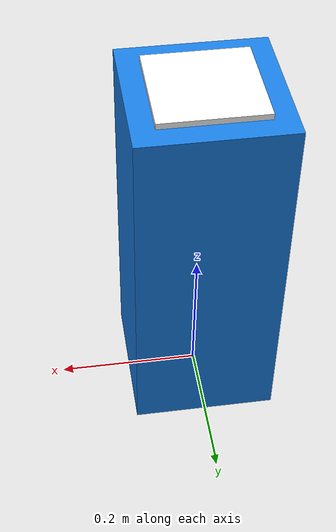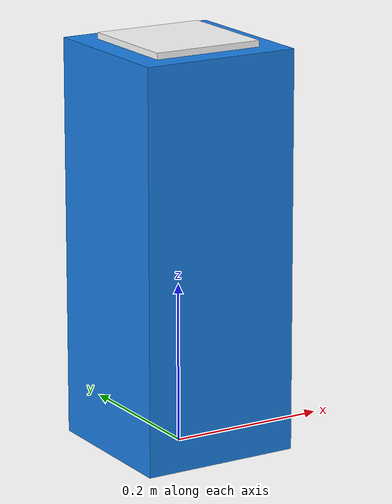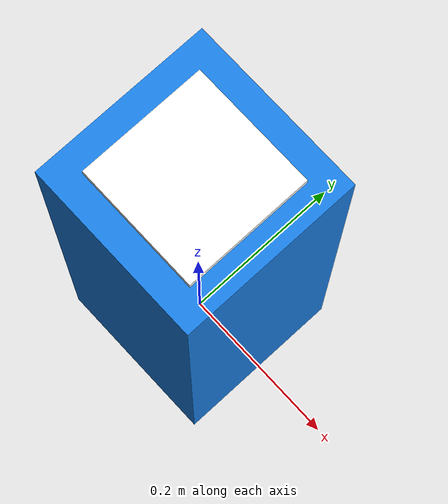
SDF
<?xml version="1.0" ?>
<sdf version="1.9">
  <model name="apriltag_column_3">
    <static>true</static>
    <link name="link">
      <collision name="pillar_col"><pose>0 0 0.25 0 0 0</pose>
        <geometry><box><size>0.20 0.20 0.5</size></box></geometry></collision>
      <visual name="pillar_vis"><pose>0 0 0.25 0 0 0</pose>
        <geometry><box><size>0.20 0.20 0.5</size></box></geometry>
        <material><ambient>0.1 0.5 0.9 1</ambient><diffuse>0.1 0.5 0.9 1</diffuse><specular>0.2 0.2 0.2 1</specular></material></visual>
      <!-- AprilTag flat on the TOP surface (facing up), read by the gripper/wrist camera -->
      <visual name="tag_vis"><pose>0 0 0.504 0 0 0</pose>
        <geometry><box><size>0.14 0.14 0.008</size></box></geometry>
        <material><diffuse>1 1 1 1</diffuse>
          <pbr><metal><albedo_map>tag36h11_2.png</albedo_map><metalness>0</metalness><roughness>1</roughness></metal></pbr>
        </material></visual>
    </link>
  </model>
</sdf>
